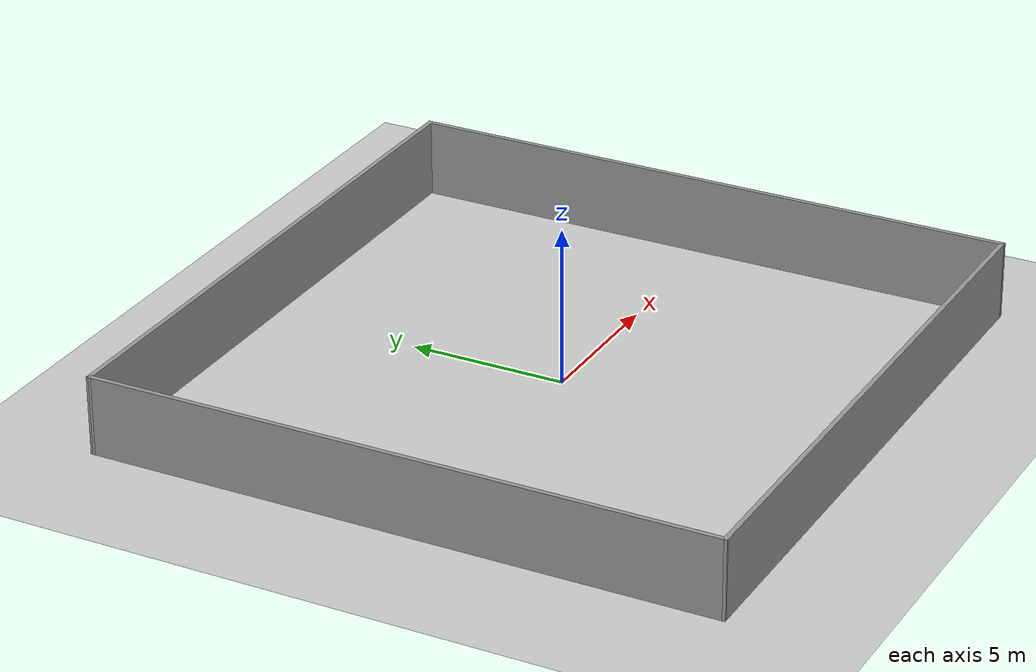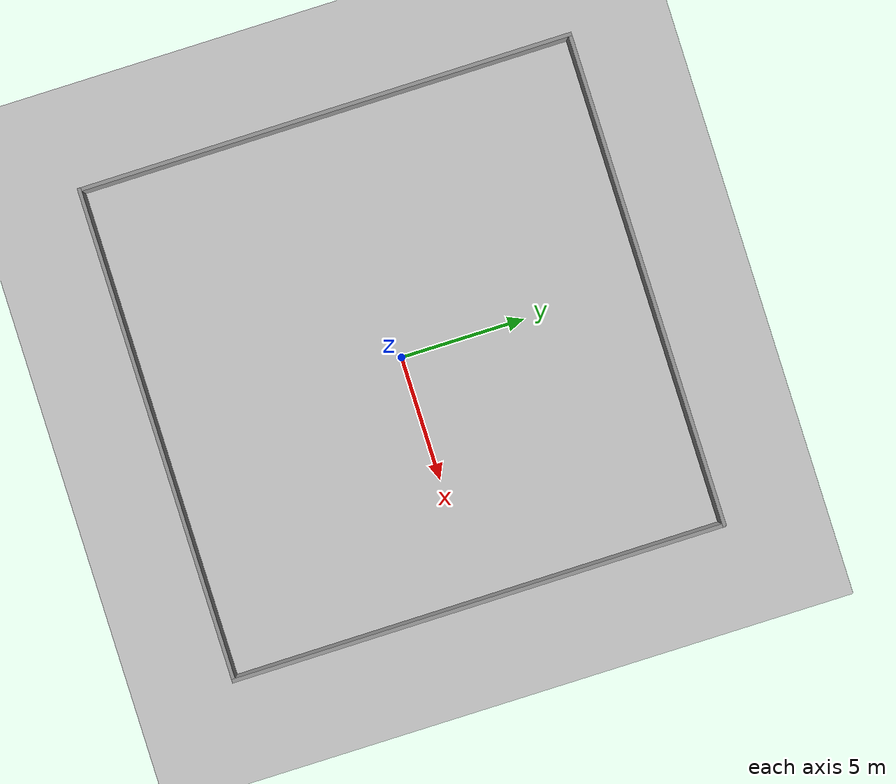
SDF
<?xml version="1.0" ?>
<sdf version='1.6'>
  <world name='default'>
    <light name='sun' type='directional'>
      <cast_shadows>1</cast_shadows>
      <pose frame=''>0 0 10 0 -0 0</pose>
      <diffuse>0.8 0.8 0.8 1</diffuse>
      <specular>0.2 0.2 0.2 1</specular>
      <attenuation>
        <range>1000</range>
        <constant>0.9</constant>
        <linear>0.01</linear>
        <quadratic>0.001</quadratic>
      </attenuation>
      <direction>-0.5 0.1 -0.9</direction>
    </light>
    <model name='ground_plane'>
      <static>1</static>
      <link name='link'>
        <collision name='collision'>
          <geometry>
            <plane>
              <normal>0 0 1</normal>
              <size>100 100</size>
            </plane>
          </geometry>
          <surface>
            <contact>
              <collide_bitmask>65535</collide_bitmask>
              <ode/>
            </contact>
            <friction>
              <ode>
                <mu>100</mu>
                <mu2>50</mu2>
              </ode>
              <torsional>
                <ode/>
              </torsional>
            </friction>
            <bounce/>
          </surface>
          <max_contacts>10</max_contacts>
        </collision>
        <visual name='visual'>
          <cast_shadows>0</cast_shadows>
          <geometry>
            <plane>
              <normal>0 0 1</normal>
              <size>100 100</size>
            </plane>
          </geometry>
          <material>
            <script>
              <uri>file://media/materials/scripts/gazebo.material</uri>
              <name>Gazebo/Grey</name>
            </script>
          </material>
        </visual>
        <self_collide>0</self_collide>
        <enable_wind>0</enable_wind>
        <kinematic>0</kinematic>
      </link>
    </model>
    <gravity>0 0 -9.8</gravity>
    <magnetic_field>6e-06 2.3e-05 -4.2e-05</magnetic_field>
    <atmosphere type='adiabatic'/>

    <physics name='default_physics' default='0' type='ode'>
      <!--adjust max_step size to throttle the simulation (0.001 is realtime)-->
      <max_step_size>0.001</max_step_size>
      <real_time_factor>1</real_time_factor>
      <real_time_update_rate>1000</real_time_update_rate>
    </physics>

    <scene>
      <ambient>0.4 0.4 0.4 1</ambient>
      <background>0.7 0.7 0.7 1</background>
      <shadows>1</shadows>
    </scene>
    <wind/>
    <spherical_coordinates>
      <surface_model>EARTH_WGS84</surface_model>
      <latitude_deg>0</latitude_deg>
      <longitude_deg>0</longitude_deg>
      <elevation>0</elevation>
      <heading_deg>0</heading_deg>
    </spherical_coordinates>

    <gui fullscreen='0'>
      <camera name='user_camera'>
        <pose frame=''>0 -35 50 0 1 1.571</pose>
        <view_controller>orbit</view_controller>
        <projection_type>perspective</projection_type>
      </camera>
    </gui>

    <plugin name = "puppeteer" filename = "libpuppeteer.so">
      <building_name>building</building_name>
      <robot_name>jackal</robot_name>
    </plugin>

    <include>
      <name>building</name>
      <pose>0 0 0 0 0 0</pose>
      <uri>model://20x20box</uri>
	</include>

  </world>
</sdf>

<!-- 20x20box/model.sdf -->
<sdf version='1.6'>
  <model name='20x20box'>
    <pose frame=''>4.651 -12.375 0 0 -0 0</pose>
    <link name='Wall_0'>
      <collision name='Wall_0_Collision'>
        <geometry>
          <box>
            <size>20 0.15 2.5</size>
          </box>
        </geometry>
        <pose frame=''>0 0 1.25 0 -0 0</pose>
      </collision>
      <visual name='Wall_0_Visual'>
        <pose frame=''>0 0 1.25 0 -0 0</pose>
        <geometry>
          <box>
            <size>20 0.15 2.5</size>
          </box>
        </geometry>
        <material>
          <script>
            <uri>file://media/materials/scripts/gazebo.material</uri>
            <name>Gazebo/Grey</name>
          </script>
          <ambient>1 1 1 1</ambient>
        </material>
        <meta>
          <layer>0</layer>
        </meta>
      </visual>
      <pose frame=''>-9.92491 0 0 0 -0 -1.56817</pose>
    </link>
    <link name='Wall_2'>
      <collision name='Wall_2_Collision'>
        <geometry>
          <box>
            <size>20 0.15 2.5</size>
          </box>
        </geometry>
        <pose frame=''>0 0 1.25 0 -0 0</pose>
      </collision>
      <visual name='Wall_2_Visual'>
        <pose frame=''>0 0 1.25 0 -0 0</pose>
        <geometry>
          <box>
            <size>20 0.15 2.5</size>
          </box>
        </geometry>
        <material>
          <script>
            <uri>file://media/materials/scripts/gazebo.material</uri>
            <name>Gazebo/Grey</name>
          </script>
          <ambient>1 1 1 1</ambient>
        </material>
        <meta>
          <layer>0</layer>
        </meta>
      </visual>
      <pose frame=''>-0.026 9.925 0 0 -0 0</pose>
    </link>
    <link name='Wall_4'>
      <collision name='Wall_4_Collision'>
        <geometry>
          <box>
            <size>20 0.15 2.5</size>
          </box>
        </geometry>
        <pose frame=''>0 0 1.25 0 -0 0</pose>
      </collision>
      <visual name='Wall_4_Visual'>
        <pose frame=''>0 0 1.25 0 -0 0</pose>
        <geometry>
          <box>
            <size>20 0.15 2.5</size>
          </box>
        </geometry>
        <material>
          <script>
            <uri>file://media/materials/scripts/gazebo.material</uri>
            <name>Gazebo/Grey</name>
          </script>
          <ambient>1 1 1 1</ambient>
        </material>
        <meta>
          <layer>0</layer>
        </meta>
      </visual>
      <pose frame=''>0.026087 -9.925 0 0 -0 0</pose>
    </link>
    <link name='Wall_7'>
      <collision name='Wall_7_Collision'>
        <geometry>
          <box>
            <size>20.0001 0.15 2.5</size>
          </box>
        </geometry>
        <pose frame=''>0 0 1.25 0 -0 0</pose>
      </collision>
      <visual name='Wall_7_Visual'>
        <pose frame=''>0 0 1.25 0 -0 0</pose>
        <geometry>
          <box>
            <size>20.0001 0.15 2.5</size>
          </box>
        </geometry>
        <material>
          <script>
            <uri>file://media/materials/scripts/gazebo.material</uri>
            <name>Gazebo/Grey</name>
          </script>
          <ambient>1 1 1 1</ambient>
        </material>
        <meta>
          <layer>0</layer>
        </meta>
      </visual>
      <pose frame=''>9.925 0 0 0 -0 -1.56818</pose>
    </link>
    <static>1</static>
  </model>
</sdf>
